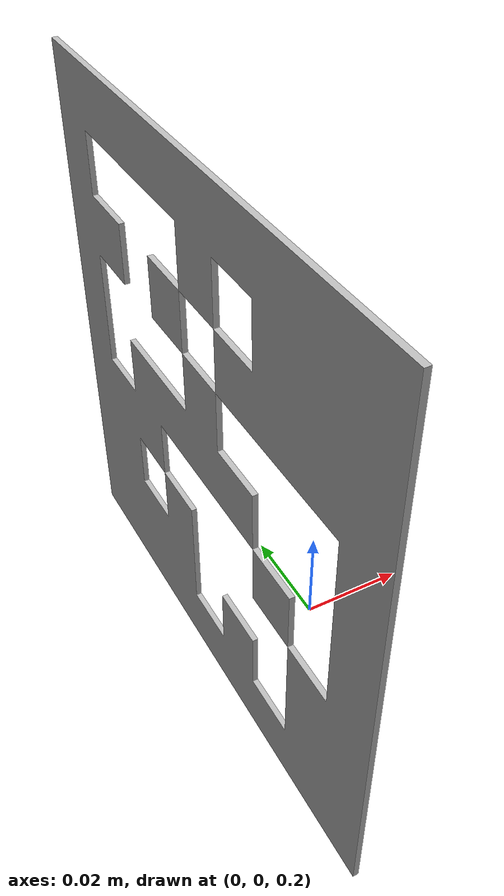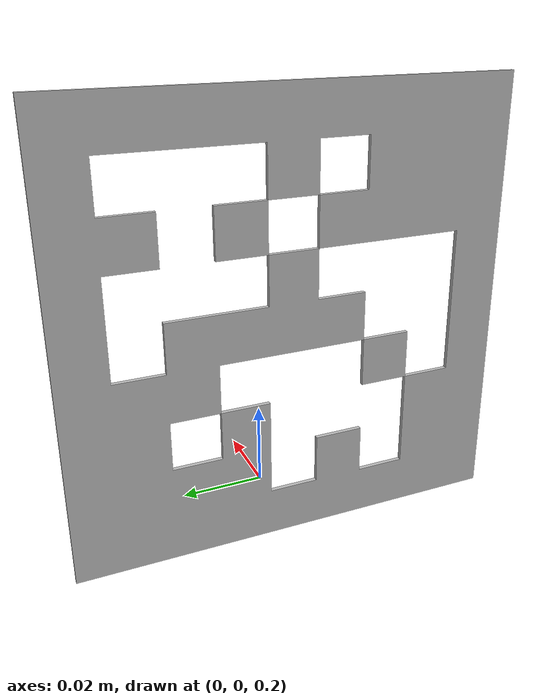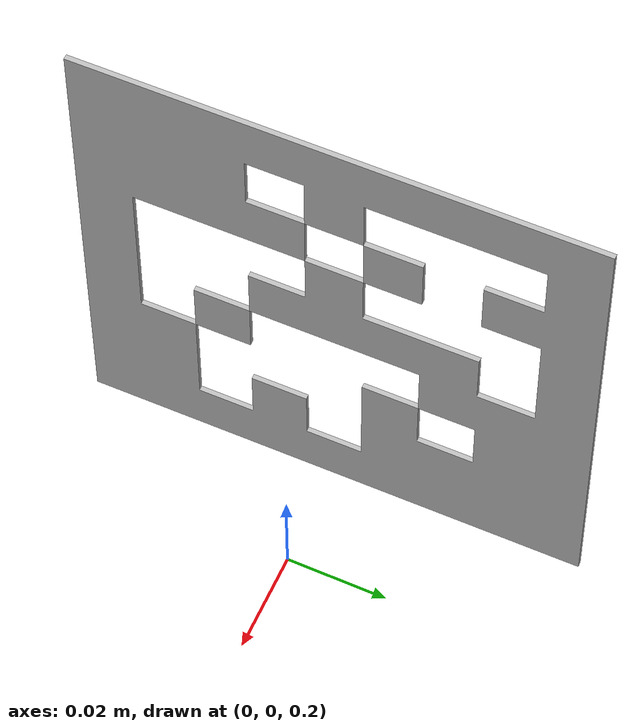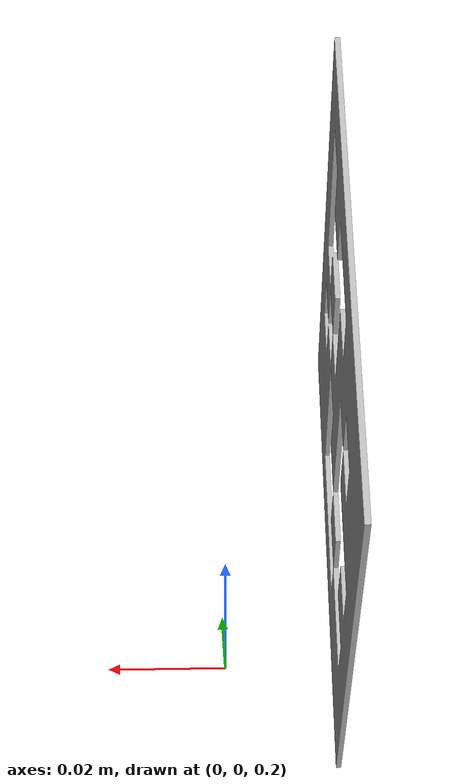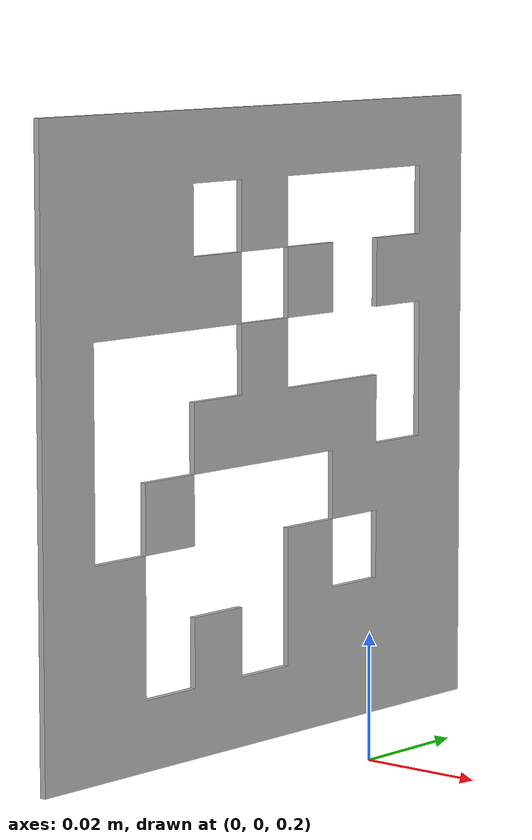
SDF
<?xml version='1.0'?>
<sdf version="1.4">
  <model name="aruco1">
      <pose>-0.022 -0.05 0.3 0 1.57 0</pose>
      <static>true</static>
      <link name="aruco1">
        <visual name="aruco1_vis">
          <geometry>
            <mesh>
              <uri>/home/anyone/autonomous_f1tenth/src/f1tenth/f1tenth_description/meshes/aruco.stl</uri>
              <scale>0.001 0.001 0.001</scale>
            </mesh>
          </geometry>
        </visual>
      </link>
    </model>
</sdf>
